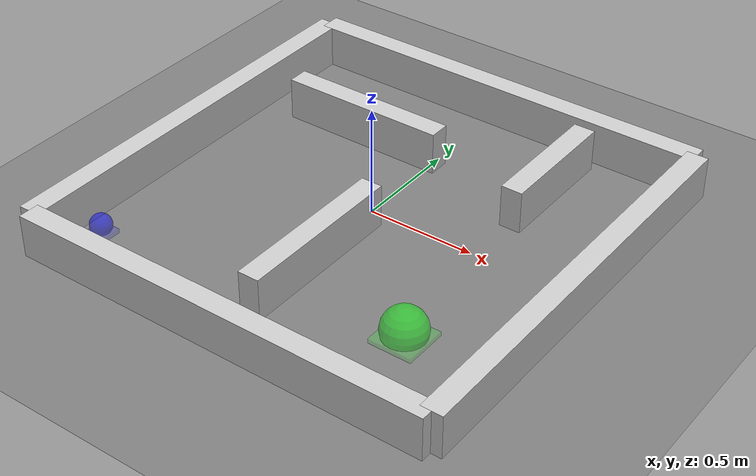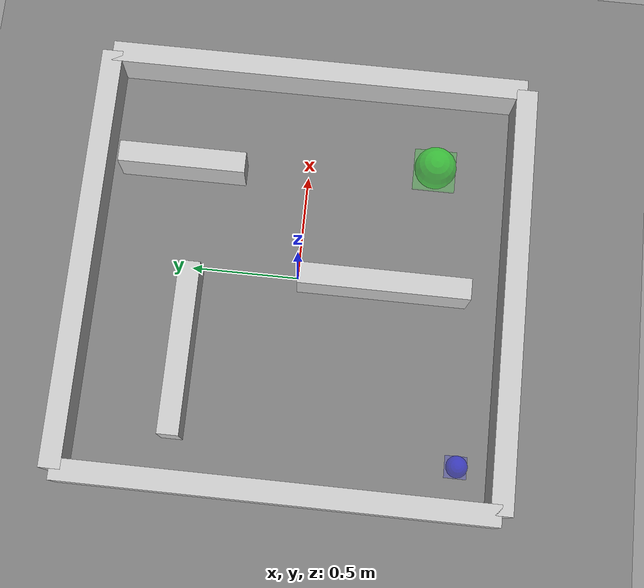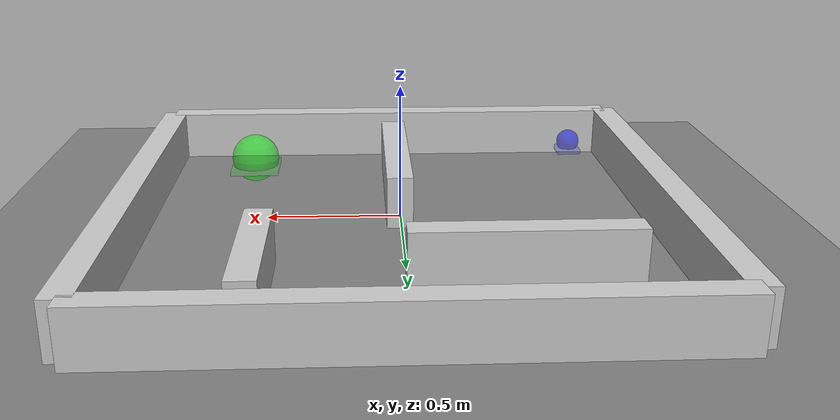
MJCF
<?xml version="1.0" ?>
<mujoco model="maze">
  <!-- ========== COMPILATION OPTIONS ========== -->
  <compiler angle="radian" inertiafromgeom="true" />

  <!-- ========== GLOBAL SETTINGS ========== -->
  <option timestep="0.001" viscosity="0.0" gravity="0 0 -9.81">
    <flag warmstart="disable" />
  </option>

  <!-- ========== ASSETS ========== -->
  <asset>
    <!-- Materials for visualization -->
    <material name="wall" rgba="0.8 0.8 0.8 1.0" />
    <material name="floor" rgba="0.5 0.5 0.5 1.0" />
    <material name="goal" rgba="0.0 1.0 0.0 0.3" />
  </asset>

  <!-- ========== WORLD BODY ========== -->
  <worldbody>
    <!-- Ground plane -->
    <geom name="ground" type="plane" size="10 10 0.1" pos="0 0 -0.1" material="floor" />

    <!-- ========== SIMPLE RECTANGULAR MAZE ========== -->
    <!-- Outer boundary walls (soft contact for smooth gradients) -->

    <!-- North wall (top) -->
    <geom name="wall_north" type="box" size="1.0 0.05 0.1" pos="0 1.0 0.05" material="wall"
          solimp="0.9 0.95 0.001" solref="0.02 1" />

    <!-- South wall (bottom) -->
    <geom name="wall_south" type="box" size="1.0 0.05 0.1" pos="0 -1.0 0.05" material="wall"
          solimp="0.9 0.95 0.001" solref="0.02 1" />

    <!-- East wall (right) -->
    <geom name="wall_east" type="box" size="0.05 1.0 0.1" pos="1.0 0 0.05" material="wall"
          solimp="0.9 0.95 0.001" solref="0.02 1" />

    <!-- West wall (left) -->
    <geom name="wall_west" type="box" size="0.05 1.0 0.1" pos="-1.0 0 0.05" material="wall"
          solimp="0.9 0.95 0.001" solref="0.02 1" />

    <!-- ========== INTERNAL MAZE WALLS ========== -->
    <!-- These can be adjusted to create different maze configurations -->

    <!-- Vertical wall (middle) from south to center -->
    <geom name="wall_v1" type="box" size="0.05 0.4 0.1" pos="0.0 -0.4 0.05" material="wall"
          solimp="0.9 0.95 0.001" solref="0.02 1" />

    <!-- Horizontal wall (upper-left corner) -->
    <geom name="wall_h1" type="box" size="0.4 0.05 0.1" pos="-0.4 0.5 0.05" material="wall"
          solimp="0.9 0.95 0.001" solref="0.02 1" />

    <!-- Vertical wall (upper-right) -->
    <geom name="wall_v2" type="box" size="0.05 0.3 0.1" pos="0.5 0.6 0.05" material="wall"
          solimp="0.9 0.95 0.001" solref="0.02 1" />

    <!-- ========== START AND GOAL MARKERS ========== -->
    <!-- Start position marker (southwest) -->
    <geom name="start_marker" type="box" size="0.05 0.05 0.01" pos="-0.8 -0.8 0.01" material="floor"
          rgba="0.0 0.0 1.0 0.1" />

    <!-- Goal position marker at maze(0.6, -0.6) = sim(0.8, 0.2) -->
    <geom name="goal_marker" type="box" size="0.1 0.1 0.01" pos="0.6 -0.6 0.01" material="goal"
          rgba="0.0 1.0 0.0 0.2" />

    <!-- ========== SITES FOR REFERENCE ========== -->
    <!-- Start site for robot initialization -->
    <site name="start_site" type="sphere" size="0.05" pos="-0.8 -0.8 0.05" rgba="0.0 0.0 1.0 0.5" />

    <!-- Goal site for distance computation — maze(0.6, -0.6) = sim(0.8, 0.2) -->
    <site name="goal_site" type="sphere" size="0.1" pos="0.6 -0.6 0.05" rgba="0.0 1.0 0.0 0.5" />
  </worldbody>

  <!-- ========== SENSORS ========== -->
  <sensor>
    <!-- Goal site position for reference in loss computation -->
    <framepos name="goal_pos" objtype="site" objname="goal_site" />
  </sensor>
</mujoco>
